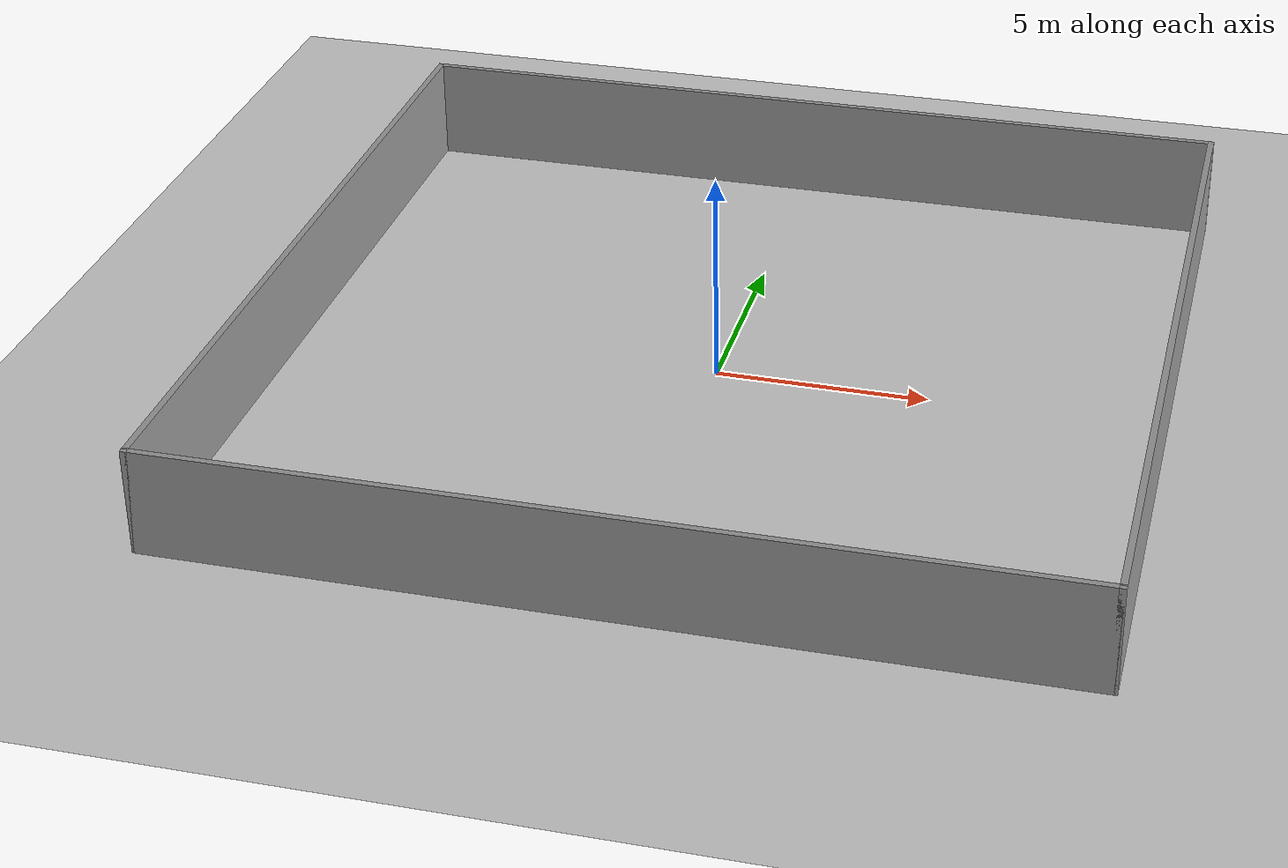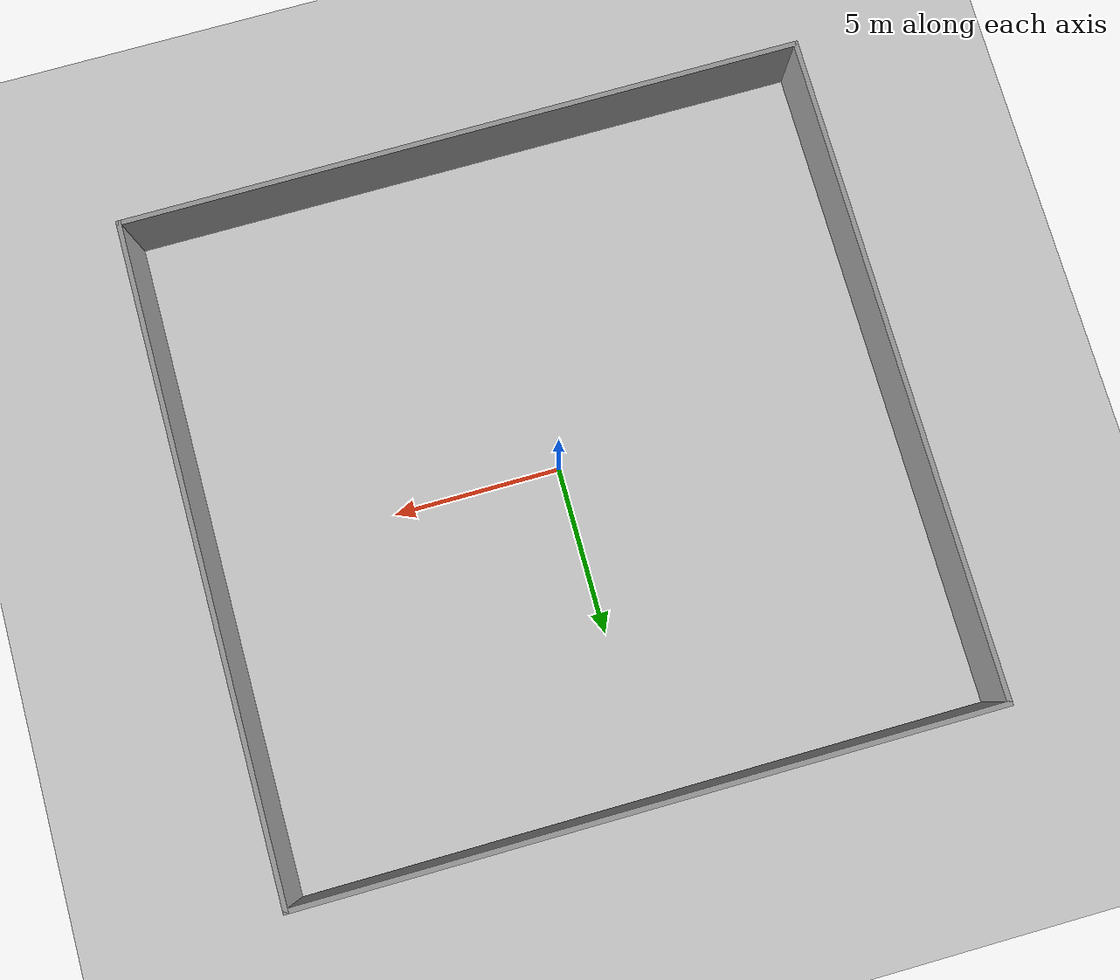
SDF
<?xml version="1.0" ?>
<sdf version='1.7'>
  <world name='default'>

    <include>
      <uri>model://ground_plane</uri>
    </include>
    <include>
      <uri>model://sun</uri>
    </include>

    <plugin name="ros_interface_plugin" filename="librotors_gazebo_ros_interface_plugin.so"/>

    <gravity>0 0 -9.8</gravity>
    <magnetic_field>6e-06 2.3e-05 -4.2e-05</magnetic_field>
    <atmosphere type='adiabatic'/>
    <physics type='ode'>
      <max_step_size>0.001</max_step_size>
      <real_time_factor>1.0</real_time_factor>
      <real_time_update_rate>1000</real_time_update_rate>
    </physics>
    <scene>
      <ambient>0.4 0.4 0.4 1</ambient>
      <background>0.7 0.7 0.7 1</background>
      <shadows>1</shadows>
    </scene>
    <wind/>
    <spherical_coordinates>
      <surface_model>EARTH_WGS84</surface_model>
      <latitude_deg>0</latitude_deg>
      <longitude_deg>0</longitude_deg>
      <elevation>0</elevation>
      <heading_deg>0</heading_deg>
    </spherical_coordinates>

    <model name='very_simple'>
      <pose>0.18192 -0.01027 0 0 -0 0</pose>
      <link name='Wall_3'>
        <collision name='Wall_3_Collision'>
          <geometry>
            <box>
              <size>20 0.15 2.5</size>
            </box>
          </geometry>
          <pose>0 0 1.25 0 -0 0</pose>
          <max_contacts>10</max_contacts>
          <surface>
            <contact>
              <ode/>
            </contact>
            <bounce/>
            <friction>
              <torsional>
                <ode/>
              </torsional>
              <ode/>
            </friction>
          </surface>
        </collision>
        <visual name='Wall_3_Visual'>
          <pose>0 0 1.25 0 -0 0</pose>
          <geometry>
            <box>
              <size>20 0.15 2.5</size>
            </box>
          </geometry>
          <material>
            <script>
              <uri>file://media/materials/scripts/gazebo.material</uri>
              <name>Gazebo/Grey</name>
            </script>
            <ambient>1 1 1 1</ambient>
          </material>
          <meta>
            <layer>0</layer>
          </meta>
        </visual>
        <pose>10.175 0 0 0 -0 1.5708</pose>
        <self_collide>0</self_collide>
        <enable_wind>0</enable_wind>
        <kinematic>0</kinematic>
      </link>

      <link name='Wall_4'>
        <collision name='Wall_4_Collision'>
          <geometry>
            <box>
              <size>20.5 0.15 2.5</size>
            </box>
          </geometry>
          <pose>0 0 1.25 0 -0 0</pose>
        </collision>
        <visual name='Wall_4_Visual'>
          <pose>0 0 1.25 0 -0 0</pose>
          <geometry>
            <box>
              <size>20.5 0.15 2.5</size>
            </box>
          </geometry>
          <material>
            <script>
              <uri>file://media/materials/scripts/gazebo.material</uri>
              <name>Gazebo/Grey</name>
            </script>
            <ambient>1 1 1 1</ambient>
          </material>
          <meta>
            <layer>0</layer>
          </meta>
        </visual>
        <pose>-0 9.925 0 0 -0 3.14159</pose>
        <self_collide>0</self_collide>
        <enable_wind>0</enable_wind>
        <kinematic>0</kinematic>
      </link>

      <link name='Wall_5'>
        <collision name='Wall_5_Collision'>
          <geometry>
            <box>
              <size>20 0.15 2.5</size>
            </box>
          </geometry>
          <pose>0 0 1.25 0 -0 0</pose>
          <max_contacts>10</max_contacts>
          <surface>
            <contact>
              <ode/>
            </contact>
            <bounce/>
            <friction>
              <torsional>
                <ode/>
              </torsional>
              <ode/>
            </friction>
          </surface>
        </collision>
        <visual name='Wall_5_Visual'>
          <pose>0 0 1.25 0 -0 0</pose>
          <geometry>
            <box>
              <size>20 0.15 2.5</size>
            </box>
          </geometry>
          <material>
            <script>
              <uri>file://media/materials/scripts/gazebo.material</uri>
              <name>Gazebo/Grey</name>
            </script>
            <ambient>1 1 1 1</ambient>
          </material>
          <meta>
            <layer>0</layer>
          </meta>
        </visual>
        <pose>-10.175 0 0 0 -0 -1.5708</pose>
        <self_collide>0</self_collide>
        <enable_wind>0</enable_wind>
        <kinematic>0</kinematic>
      </link>

      <link name='Wall_6'>
        <collision name='Wall_6_Collision'>
          <geometry>
            <box>
              <size>20.5 0.15 2.5</size>
            </box>
          </geometry>
          <pose>0 0 1.25 0 -0 0</pose>
          <max_contacts>10</max_contacts>
          <surface>
            <contact>
              <ode/>
            </contact>
            <bounce/>
            <friction>
              <torsional>
                <ode/>
              </torsional>
              <ode/>
            </friction>
          </surface>
        </collision>
        <visual name='Wall_6_Visual'>
          <pose>0 0 1.25 0 -0 0</pose>
          <geometry>
            <box>
              <size>20.5 0.15 2.5</size>
            </box>
          </geometry>
          <material>
            <script>
              <uri>file://media/materials/scripts/gazebo.material</uri>
              <name>Gazebo/Grey</name>
            </script>
            <ambient>1 1 1 1</ambient>
          </material>
          <meta>
            <layer>0</layer>
          </meta>
        </visual>
        <pose>-0 -9.925 0 0 -0 0</pose>
        <self_collide>0</self_collide>
        <enable_wind>0</enable_wind>
        <kinematic>0</kinematic>
      </link>
      <static>1</static>
    </model>

  </world>
</sdf>
